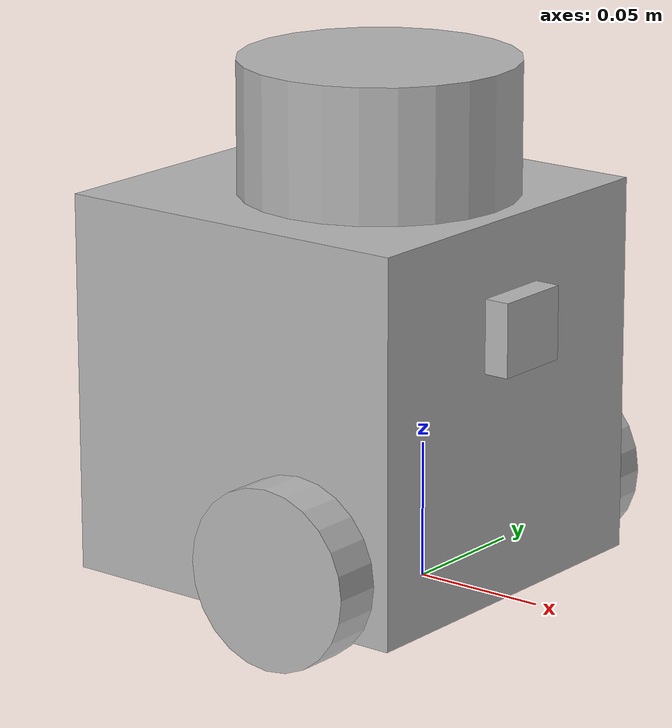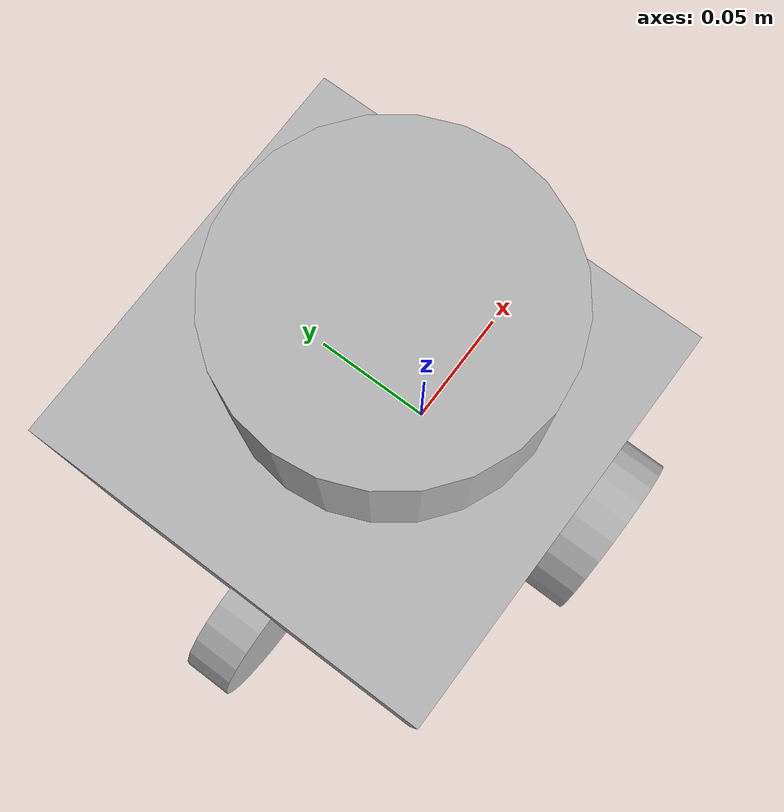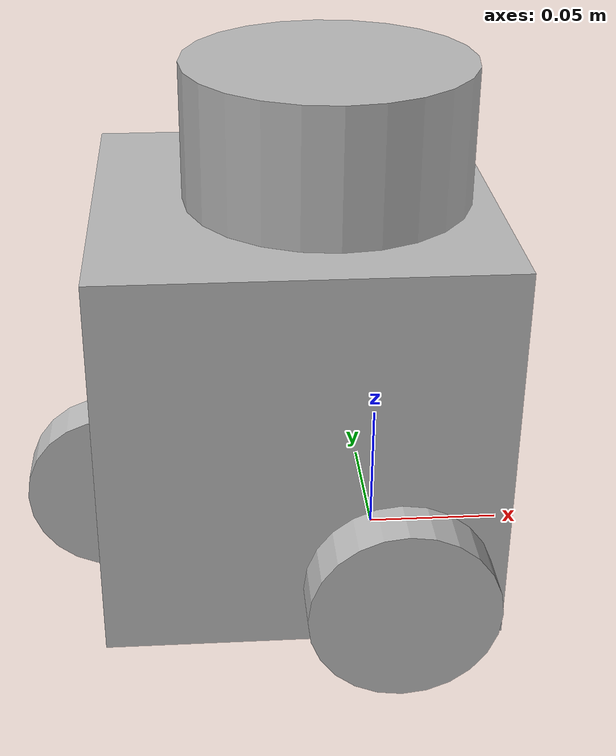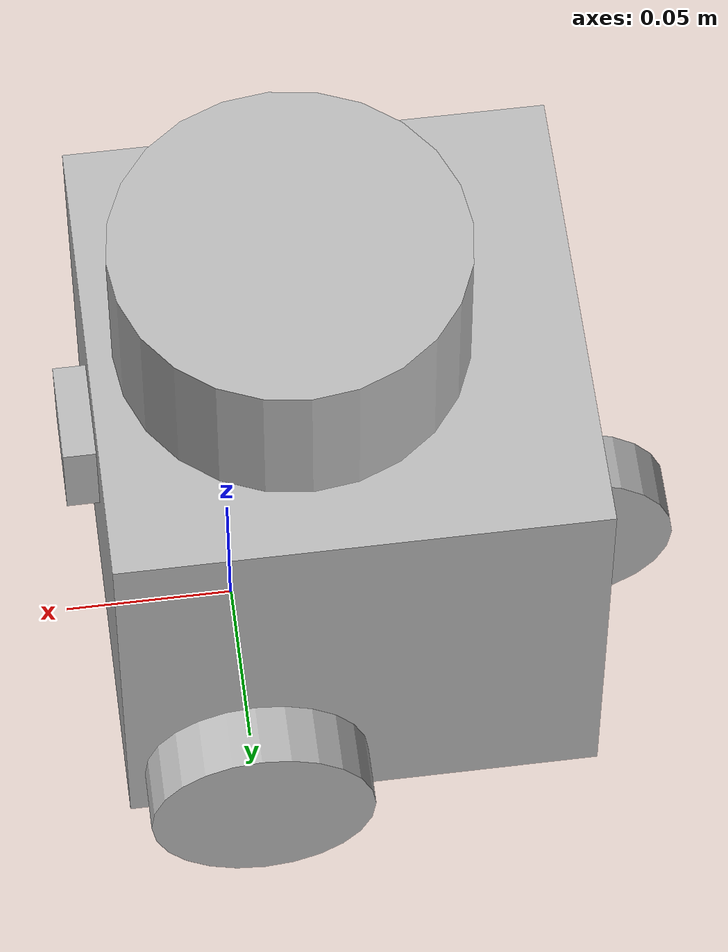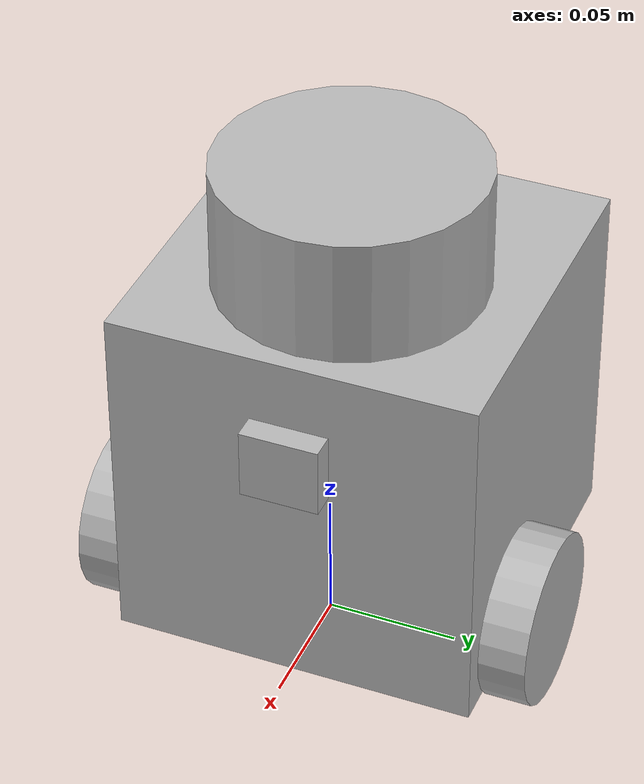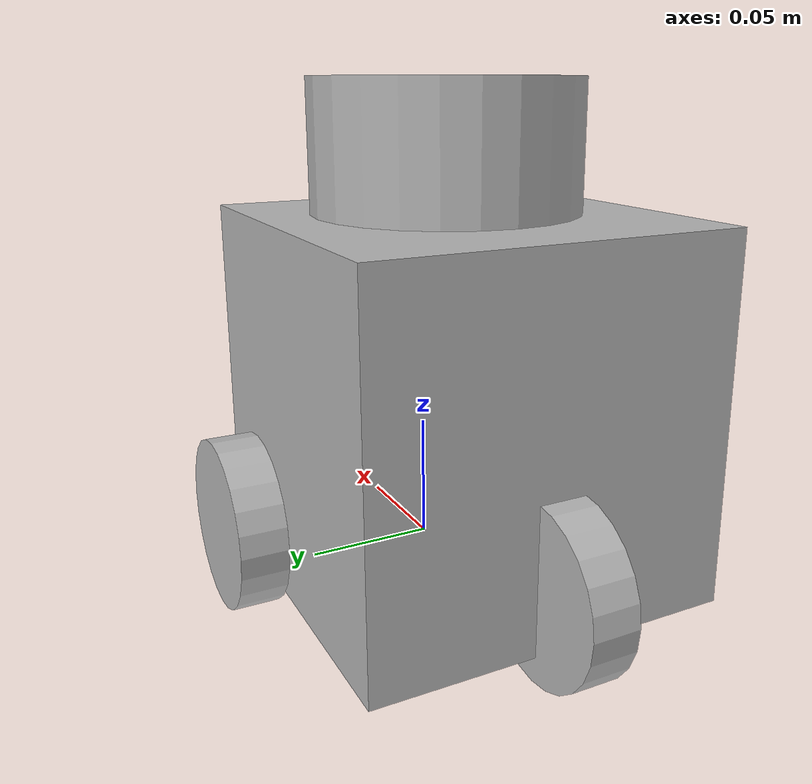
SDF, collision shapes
<?xml version="1.0" ?>
<sdf version="1.5">
  <model name="turtlebot3_burger">
    <pose>0.0 0.0 0.0 0.0 0.0 0.0</pose>

    <link name="base_footprint"/>

    <link name="base_link">

      <inertial>
        <pose>-0.032 0 0.070 0 0 0</pose>
        <inertia>
          <ixx>7.2397393e-01</ixx>
          <ixy>4.686399e-10</ixy>
          <ixz>-1.09525703e-08</ixz>
          <iyy>7.2397393e-01</iyy>
          <iyz>2.8582649e-09</iyz>
          <izz>6.53050163e-01</izz>
        </inertia>
        <mass>8.2573504e-01</mass>
      </inertial>

      <collision name="base_collision">
        <pose>-0.032 0 0.070 0 0 0</pose>
        <geometry>
          <box>
            <size>0.140 0.140 0.140</size>
          </box>
        </geometry>
      </collision>

      <visual name="base_visual">
        <pose>-0.032 0 0 0 0 0</pose>
        <geometry>
          <mesh>
            <uri>model://turtlebot3_burger/meshes/burger_base.dae</uri>
            <scale>0.001 0.001 0.001</scale>
          </mesh>
        </geometry>
      </visual>
    </link>

    <link name="camera_link">
      <inertial>
        <pose>0.04 0 0.1 0 0 0</pose>
        <inertia>
          <ixx>0.001</ixx>
          <ixy>0.000</ixy>
          <ixz>0.000</ixz>
          <iyy>0.001</iyy>
          <iyz>0.000</iyz>
          <izz>0.001</izz>
        </inertia>
        <mass>0.114</mass>
      </inertial>

      <collision name="camera_collision">
        <pose>0.04 0 0.1 0 0 0</pose>
        <geometry>
          <box>
            <size>0.015 0.030 0.027</size>
          </box>
        </geometry>
      </collision>

      <visual name="camera_visual">
        <pose>0.04 0 0.1 0 0 0</pose>
        <geometry>
          <box>
            <size>0.015 0.030 0.027</size>
          </box>
        </geometry>
      </visual>

      <sensor name="camera_sensor" type="camera">
        <update_rate>30.0</update_rate>
        <always_on>1</always_on>
        <camera name="camera">
          <pose>0.04 0 0.1 0 0 0</pose>
          <horizontal_fov>1.3962634</horizontal_fov>
          <image>
            <width>800</width>
            <height>800</height>
            <format>R8G8B8</format>
          </image>
          <clip>
            <near>0.02</near>
            <far>300</far>
          </clip>
          <distortion>
            <k1>0.0</k1>
            <k2>0.0</k2>
            <k3>0.0</k3>
            <p1>0.0</p1>
            <p2>0.0</p2>
            <center>0.5 0.5</center>
          </distortion>
        </camera>
        <plugin filename="libgazebo_ros_camera.so" name="camera_controller">
          <ros>
            <argument>camera_sensor/image_raw:=/camera_sensor/image_raw</argument>
            <argument>camera_sensor/camera_info:=/camera_sensor/camera_info</argument>
          </ros>
          <camera_name>camera_sensor</camera_name>
          <frame_name>base_footprint</frame_name>
          <hack_baseline>0.07</hack_baseline>
        </plugin>
      </sensor>
    </link>

    <link name="imu_link">
      <sensor name="tb3_imu" type="imu">
        <always_on>true</always_on>
        <update_rate>200</update_rate>
        <imu>
          <angular_velocity>
            <x>
              <noise type="gaussian">
                <mean>0.0</mean>
                <stddev>2e-4</stddev>
              </noise>
            </x>
            <y>
              <noise type="gaussian">
                <mean>0.0</mean>
                <stddev>2e-4</stddev>
              </noise>
            </y>
            <z>
              <noise type="gaussian">
                <mean>0.0</mean>
                <stddev>2e-4</stddev>
              </noise>
            </z>
          </angular_velocity>
          <linear_acceleration>
            <x>
              <noise type="gaussian">
                <mean>0.0</mean>
                <stddev>1.7e-2</stddev>
              </noise>
            </x>
            <y>
              <noise type="gaussian">
                <mean>0.0</mean>
                <stddev>1.7e-2</stddev>
              </noise>
            </y>
            <z>
              <noise type="gaussian">
                <mean>0.0</mean>
                <stddev>1.7e-2</stddev>
              </noise>
            </z>
          </linear_acceleration>
        </imu>
        <plugin name="turtlebot3_imu" filename="libgazebo_ros_imu_sensor.so">
          <ros>
            <remapping>~/out:=imu</remapping>
          </ros>
        </plugin>
      </sensor>
    </link>

    <link name="base_scan">
      <inertial>
        <pose>-0.020 0 0.161 0 0 0</pose>
        <inertia>
          <ixx>0.001</ixx>
          <ixy>0.000</ixy>
          <ixz>0.000</ixz>
          <iyy>0.001</iyy>
          <iyz>0.000</iyz>
          <izz>0.001</izz>
        </inertia>
        <mass>0.114</mass>
      </inertial>

      <collision name="lidar_sensor_collision">
        <pose>-0.020 0 0.161 0 0 0</pose>
        <geometry>
          <cylinder>
            <radius>0.0508</radius>
            <length>0.055</length>
          </cylinder>
        </geometry>
      </collision>

      <visual name="lidar_sensor_visual">
        <pose>-0.032 0 0.171 0 0 0</pose>
        <geometry>
          <mesh>
            <uri>model://turtlebot3_burger/meshes/lds.dae</uri>
            <scale>0.001 0.001 0.001</scale>
          </mesh>
        </geometry>
      </visual>

      <sensor name="hls_lfcd_lds" type="ray">
        <always_on>true</always_on>
        <visualize>false</visualize>
        <pose>-0.032 0 0.171 0 0 0</pose>
        <update_rate>5</update_rate>
        <ray>
          <scan>
            <horizontal>
              <samples>360</samples>
              <resolution>1.000000</resolution>
              <min_angle>0.000000</min_angle>
              <max_angle>6.280000</max_angle>
            </horizontal>
          </scan>
          <range>
            <min>0.120000</min>
            <max>3.5</max>
            <resolution>0.015000</resolution>
          </range>
          <noise>
            <type>gaussian</type>
            <mean>0.0</mean>
            <stddev>0.01</stddev>
          </noise>
        </ray>
        <plugin name="turtlebot3_laserscan" filename="libgazebo_ros_ray_sensor.so">
          <ros>
            <remapping>~/out:=scan</remapping>
          </ros>
          <output_type>sensor_msgs/LaserScan</output_type>
          <frame_name>base_scan</frame_name>
        </plugin>
      </sensor>
    </link>

    <link name="wheel_left_link">

      <inertial>
        <pose>0 0.08 0.023 -1.57 0 0</pose>
        <inertia>
          <ixx>1.8158194e-03</ixx>
          <ixy>-9.3392e-12</ixy>
          <ixz>1.04909e-11</ixz>
          <iyy>3.2922126e-03</iyy>
          <iyz>5.75694e-11</iyz>
          <izz>1.8158194e-03</izz>
        </inertia>
        <mass>2.8498940e-02</mass>
      </inertial>

      <collision name="wheel_left_collision">
        <pose>0 0.08 0.023 -1.57 0 0</pose>
        <geometry>
          <cylinder>
            <radius>0.033</radius>
            <length>0.018</length>
          </cylinder>
        </geometry>
        <surface>
          <!-- This friction pamareter don't contain reliable data!! -->
          <friction>
            <ode>
              <mu>100000.0</mu>
              <mu2>100000.0</mu2>
              <fdir1>0 0 0</fdir1>
              <slip1>0.0</slip1>
              <slip2>0.0</slip2>
            </ode>
          </friction>
          <contact>
            <ode>
              <soft_cfm>0</soft_cfm>
              <soft_erp>0.2</soft_erp>
              <kp>1e+5</kp>
              <kd>1</kd>
              <max_vel>0.01</max_vel>
              <min_depth>0.001</min_depth>
            </ode>
          </contact>
        </surface>
      </collision>

      <visual name="wheel_left_visual">
        <pose>0 0.08 0.023 0 0 0</pose>
        <geometry>
          <mesh>
            <uri>model://turtlebot3_burger/meshes/tire.dae</uri>
            <scale>0.001 0.001 0.001</scale>
          </mesh>
        </geometry>
      </visual>
    </link>

    <link name="wheel_right_link">

      <inertial>
        <pose>0.0 -0.08 0.023 -1.57 0 0</pose>
        <inertia>
          <ixx>1.8158194e-03</ixx>
          <ixy>-9.3392e-12</ixy>
          <ixz>1.04909e-11</ixz>
          <iyy>3.2922126e-03</iyy>
          <iyz>5.75694e-11</iyz>
          <izz>1.8158194e-03</izz>
        </inertia>
        <mass>2.8498940e-02</mass>
      </inertial>

      <collision name="wheel_right_collision">
        <pose>0.0 -0.08 0.023 -1.57 0 0</pose>
        <geometry>
          <cylinder>
            <radius>0.033</radius>
            <length>0.018</length>
          </cylinder>
        </geometry>
        <surface>
          <!-- This friction pamareter don't contain reliable data!! -->
          <friction>
            <ode>
              <mu>100000.0</mu>
              <mu2>100000.0</mu2>
              <fdir1>0 0 0</fdir1>
              <slip1>0.0</slip1>
              <slip2>0.0</slip2>
            </ode>
          </friction>
          <contact>
            <ode>
              <soft_cfm>0</soft_cfm>
              <soft_erp>0.2</soft_erp>
              <kp>1e+5</kp>
              <kd>1</kd>
              <max_vel>0.01</max_vel>
              <min_depth>0.001</min_depth>
            </ode>
          </contact>
        </surface>
      </collision>

      <visual name="wheel_right_visual">
        <pose>0.0 -0.08 0.023 0 0 0</pose>
        <geometry>
          <mesh>
            <uri>model://turtlebot3_burger/meshes/tire.dae</uri>
            <scale>0.001 0.001 0.001</scale>
          </mesh>
        </geometry>
      </visual>
    </link>

    <link name='caster_back_link'>
      <pose>-0.081 0 -0.004 -1.57 0 0</pose>
      <inertial>
        <mass>0.005</mass>
        <inertia>
          <ixx>0.001</ixx>
          <ixy>0.000</ixy>
          <ixz>0.000</ixz>
          <iyy>0.001</iyy>
          <iyz>0.000</iyz>
          <izz>0.001</izz>
        </inertia>
      </inertial>
      <collision name='collision'>
        <geometry>
          <sphere>
            <radius>0.005000</radius>
          </sphere>
        </geometry>
        <surface>
          <contact>
            <ode>
              <soft_cfm>0</soft_cfm>
              <soft_erp>0.2</soft_erp>
              <kp>1e+5</kp>
              <kd>1</kd>
              <max_vel>0.01</max_vel>
              <min_depth>0.001</min_depth>
            </ode>
          </contact>
        </surface>
      </collision>
    </link>

    <link name="wheel_mid_link">

      <inertial>
        <pose>-0.1 0 0.023 -1.57 0 0</pose>
        <inertia>
          <ixx>1.8158194e-03</ixx>
          <ixy>-9.3392e-12</ixy>
          <ixz>1.04909e-11</ixz>
          <iyy>3.2922126e-03</iyy>
          <iyz>5.75694e-11</iyz>
          <izz>1.8158194e-03</izz>
        </inertia>
        <mass>2.8498940e-02</mass>
      </inertial>

      <collision name="wheel_mid_collision">
        <pose>-0.1 0 0.023 -1.57 0 0</pose>
        <geometry>
          <cylinder>
            <radius>0.033</radius>
            <length>0.018</length>
          </cylinder>
        </geometry>
        <surface>
          <!-- This friction pamareter don't contain reliable data!! -->
          <friction>
            <ode>
              <mu>100000.0</mu>
              <mu2>100000.0</mu2>
              <fdir1>0 0 0</fdir1>
              <slip1>0.0</slip1>
              <slip2>0.0</slip2>
            </ode>
          </friction>
          <contact>
            <ode>
              <soft_cfm>0</soft_cfm>
              <soft_erp>0.2</soft_erp>
              <kp>1e+5</kp>
              <kd>1</kd>
              <max_vel>0.01</max_vel>
              <min_depth>0.001</min_depth>
            </ode>
          </contact>
        </surface>
      </collision>

      <visual name="wheel_mid_visual">
        <pose>-0.1 0 0.023 0 0 0</pose>
        <geometry>
          <mesh>
            <uri>model://turtlebot3_burger/meshes/tire.dae</uri>
            <scale>0.001 0.001 0.001</scale>
          </mesh>
        </geometry>
      </visual>
    </link>

    <joint name="base_joint" type="fixed">
      <parent>base_footprint</parent>
      <child>base_link</child>
      <pose>0.0 0.0 0.010 0 0 0</pose>
    </joint>

    <joint name="wheel_left_joint" type="revolute">
      <parent>base_link</parent>
      <child>wheel_left_link</child>
      <pose>0.0 0.08 0.023 -1.57 0 0</pose>
      <axis>
        <xyz>0 0 1</xyz>
      </axis>
    </joint>

    <joint name="wheel_right_joint" type="revolute">
      <parent>base_link</parent>
      <child>wheel_right_link</child>
      <pose>0.0 -0.08 0.023 -1.57 0 0</pose>
      <axis>
        <xyz>0 0 1</xyz>
      </axis>
    </joint>

    <joint name="wheel_mid_joint" type="revolute">
      <parent>base_link</parent>
      <child>wheel_mid_link</child>
      <pose>-0.1 0 0.023 -1.57 0 0</pose>
      <axis>
        <xyz>0 0 1</xyz>
      </axis>
    </joint>

    <joint name='caster_back_joint' type='ball'>
      <parent>base_link</parent>
      <child>caster_back_link</child>
    </joint>

    <joint name="imu_joint" type="fixed">
      <parent>base_link</parent>
      <child>imu_link</child>
      <pose>-0.032 0 0.068 0 0 0</pose>
      <axis>
        <xyz>0 0 1</xyz>
      </axis>
    </joint>

    <joint name="lidar_joint" type="fixed">
      <parent>base_link</parent>
      <child>base_scan</child>
      <pose>-0.032 0 0.171 0 0 0</pose>
      <axis>
        <xyz>0 0 1</xyz>
      </axis>
    </joint>

    <joint name="camera_joint" type="fixed">
      <parent>base_link</parent>
      <child>camera_link</child>
      <pose>0.04 0 0.1 0 0 0</pose>
      <axis>
        <xyz>0 0 1</xyz>
      </axis>
    </joint>

    <plugin name="turtlebot3_diff_drive" filename="libgazebo_ros_diff_drive.so">

      <ros>
      </ros>

      <update_rate>30</update_rate>

      <!-- wheels -->
      <left_joint>wheel_left_joint</left_joint>
      <right_joint>wheel_right_joint</right_joint>

      <!-- kinematics -->
      <wheel_separation>0.160</wheel_separation>
      <wheel_diameter>0.066</wheel_diameter>

      <!-- limits -->
      <max_wheel_torque>20</max_wheel_torque>
      <max_wheel_acceleration>1.0</max_wheel_acceleration>

      <command_topic>cmd_vel</command_topic>

      <!-- output -->
      <publish_odom>true</publish_odom>
      <publish_odom_tf>true</publish_odom_tf>
      <publish_wheel_tf>false</publish_wheel_tf>

      <odometry_topic>odom</odometry_topic>
      <odometry_frame>odom</odometry_frame>
      <robot_base_frame>base_footprint</robot_base_frame>

    </plugin>

    <plugin name="turtlebot3_joint_state" filename="libgazebo_ros_joint_state_publisher.so">
      <ros>
        <remapping>~/out:=joint_states</remapping>
      </ros>
      <update_rate>30</update_rate>
      <joint_name>wheel_left_joint</joint_name>
      <joint_name>wheel_right_joint</joint_name>
    </plugin>
  </model>
</sdf>
